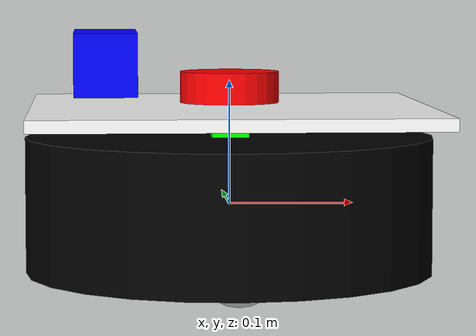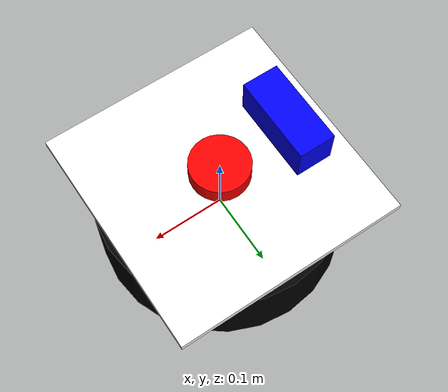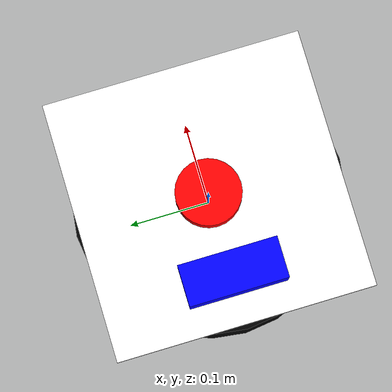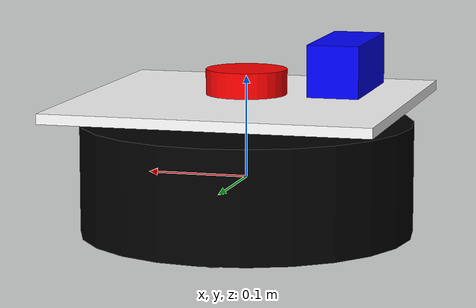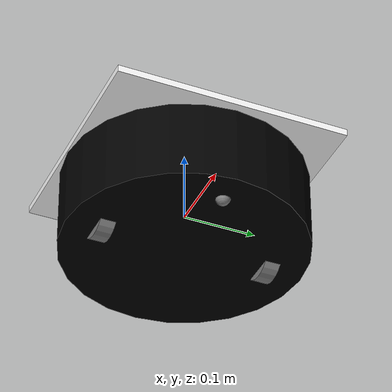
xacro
<?xml version="1.0"?>
<robot name="turtlebot2" xmlns:xacro="http://ros.org/wiki/xacro">

  <!-- Material definitions -->
  <material name="white">
    <color rgba="1 1 1 1"/>
  </material>
  <material name="black">
    <color rgba="0 0 0 1"/>
  </material>
  <material name="red">
    <color rgba="1 0 0 1"/>
  </material>
  <material name="green">
    <color rgba="0 1 0 1"/>
  </material>
  <material name="blue">
    <color rgba="0 0 1 1"/>
  </material>
  <material name="gray">
    <color rgba="0.5 0.5 0.5 1"/>
  </material>

  <!-- BASE LINK -->
  <link name="base_link">
    <visual>
      <geometry>
        <cylinder radius="0.165" length="0.11"/>
      </geometry>
      <material name="black"/>
    </visual>
    <collision>
      <geometry>
        <cylinder radius="0.165" length="0.11"/>
      </geometry>
    </collision>
    <inertial>
      <mass value="2.0"/>
      <inertia ixx="0.01" ixy="0" ixz="0" iyy="0.01" iyz="0" izz="0.02"/>
    </inertial>
  </link>

  <!-- WHEEL LEFT -->
  <link name="wheel_left_link">
    <visual>
      <geometry>
        <cylinder radius="0.0325" length="0.021"/>
      </geometry>
      <material name="gray"/>
    </visual>
    <collision>
      <geometry>
        <cylinder radius="0.0325" length="0.021"/>
      </geometry>
    </collision>
    <inertial>
      <mass value="0.5"/>
      <inertia ixx="0.001" ixy="0" ixz="0" iyy="0.001" iyz="0" izz="0.001"/>
    </inertial>
  </link>

  <joint name="wheel_left_joint" type="continuous">
    <parent link="base_link"/>
    <child link="wheel_left_link"/>
    <origin xyz="0 0.115 -0.0325" rpy="-1.57079633 0 0"/>
    <axis xyz="0 0 1"/>
  </joint>

  <!-- WHEEL RIGHT -->
  <link name="wheel_right_link">
    <visual>
      <geometry>
        <cylinder radius="0.0325" length="0.021"/>
      </geometry>
      <material name="gray"/>
    </visual>
    <collision>
      <geometry>
        <cylinder radius="0.0325" length="0.021"/>
      </geometry>
    </collision>
    <inertial>
      <mass value="0.5"/>
      <inertia ixx="0.001" ixy="0" ixz="0" iyy="0.001" iyz="0" izz="0.001"/>
    </inertial>
  </link>

  <joint name="wheel_right_joint" type="continuous">
    <parent link="base_link"/>
    <child link="wheel_right_link"/>
    <origin xyz="0 -0.115 -0.0325" rpy="-1.57079633 0 0"/>
    <axis xyz="0 0 1"/>
  </joint>

  <!-- CASTER WHEEL -->
  <link name="caster_wheel_link">
    <visual>
      <geometry>
        <sphere radius="0.01"/>
      </geometry>
      <material name="gray"/>
    </visual>
    <collision>
      <geometry>
        <sphere radius="0.01"/>
      </geometry>
    </collision>
    <inertial>
      <mass value="0.1"/>
      <inertia ixx="0.0001" ixy="0" ixz="0" iyy="0.0001" iyz="0" izz="0.0001"/>
    </inertial>
  </link>

  <joint name="caster_wheel_joint" type="fixed">
    <parent link="base_link"/>
    <child link="caster_wheel_link"/>
    <origin xyz="0.12 0 -0.0525" rpy="0 0 0"/>
  </joint>

  <!-- TOP PLATE -->
  <link name="top_plate_link">
    <visual>
      <geometry>
        <box size="0.32 0.32 0.01"/>
      </geometry>
      <material name="white"/>
    </visual>
    <inertial>
      <mass value="0.3"/>
      <inertia ixx="0.001" ixy="0" ixz="0" iyy="0.001" iyz="0" izz="0.002"/>
    </inertial>
  </link>

  <joint name="top_plate_joint" type="fixed">
    <parent link="base_link"/>
    <child link="top_plate_link"/>
    <origin xyz="0 0 0.075" rpy="0 0 0"/>
  </joint>

  <!-- YDLiDAR (Laser Scanner) -->
  <link name="laser_link">
    <visual>
      <geometry>
        <cylinder radius="0.04" length="0.025"/>
      </geometry>
      <material name="red"/>
    </visual>
    <collision>
      <geometry>
        <cylinder radius="0.04" length="0.025"/>
      </geometry>
    </collision>
    <inertial>
      <mass value="0.2"/>
      <inertia ixx="0.001" ixy="0" ixz="0" iyy="0.001" iyz="0" izz="0.001"/>
    </inertial>
  </link>

  <joint name="laser_joint" type="fixed">
    <parent link="top_plate_link"/>
    <child link="laser_link"/>
    <origin xyz="0 0 0.02" rpy="0 0 0"/>
  </joint>

  <!-- RGB CAMERA -->
  <link name="camera_link">
    <visual>
      <geometry>
        <box size="0.05 0.12 0.05"/>
      </geometry>
      <material name="blue"/>
    </visual>
    <collision>
      <geometry>
        <box size="0.05 0.12 0.05"/>
      </geometry>
    </collision>
    <inertial>
      <mass value="0.1"/>
      <inertia ixx="0.0001" ixy="0" ixz="0" iyy="0.0001" iyz="0" izz="0.0001"/>
    </inertial>
  </link>

  <joint name="camera_joint" type="fixed">
    <parent link="top_plate_link"/>
    <child link="camera_link"/>
    <origin xyz="-0.1 0 0.04" rpy="0 0 0"/>
  </joint>

  <!-- CAMERA OPTICAL FRAME (For camera calibration) -->
  <link name="camera_optical_frame"/>

  <joint name="camera_optical_frame_joint" type="fixed">
    <parent link="camera_link"/>
    <child link="camera_optical_frame"/>
    <origin xyz="0 0 0" rpy="-1.57079633 0 -1.57079633"/>
  </joint>

  <!-- IMU -->
  <link name="imu_link">
    <visual>
      <geometry>
        <box size="0.03 0.03 0.03"/>
      </geometry>
      <material name="green"/>
    </visual>
    <inertial>
      <mass value="0.05"/>
      <inertia ixx="0.00001" ixy="0" ixz="0" iyy="0.00001" iyz="0" izz="0.00001"/>
    </inertial>
  </link>

  <joint name="imu_joint" type="fixed">
    <parent link="base_link"/>
    <child link="imu_link"/>
    <origin xyz="0 0 0.05" rpy="0 0 0"/>
  </joint>

</robot>
